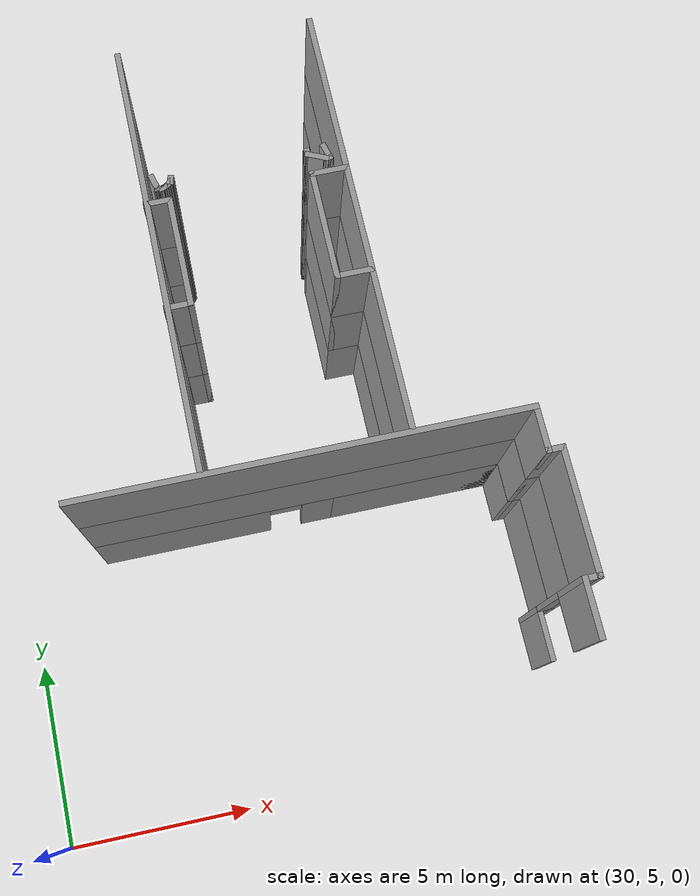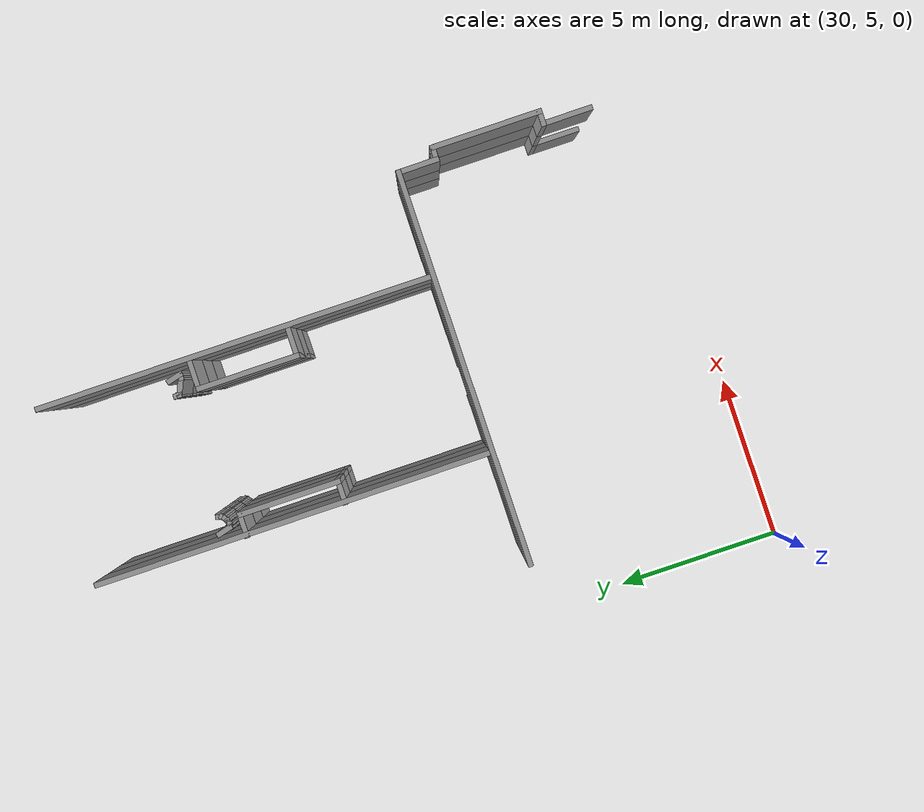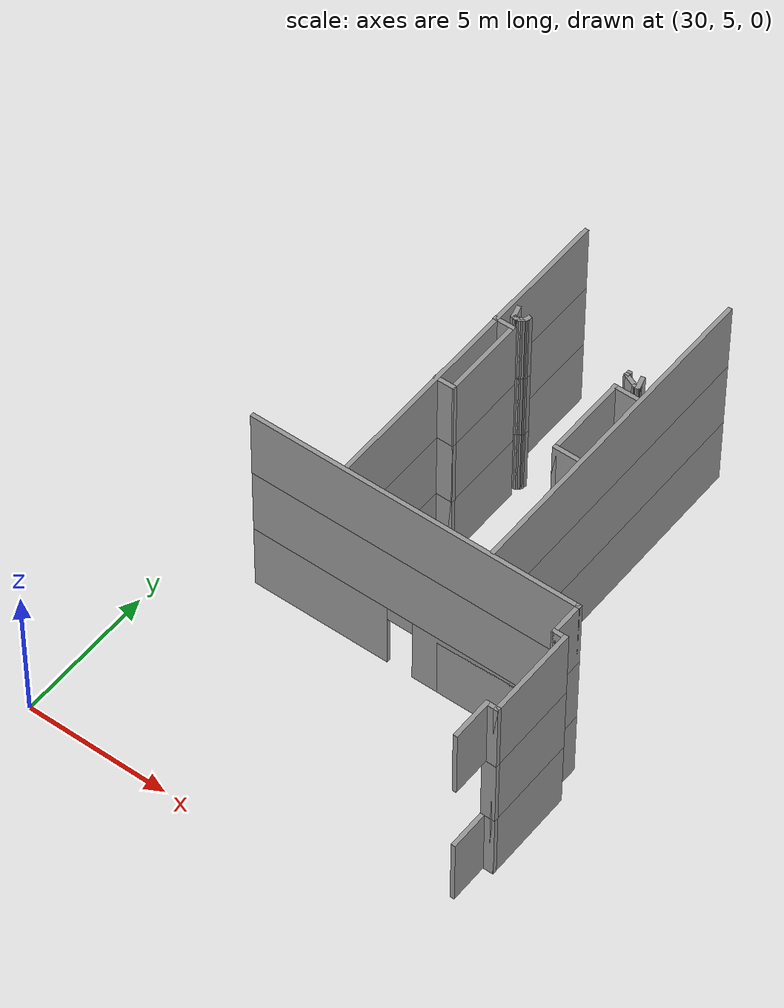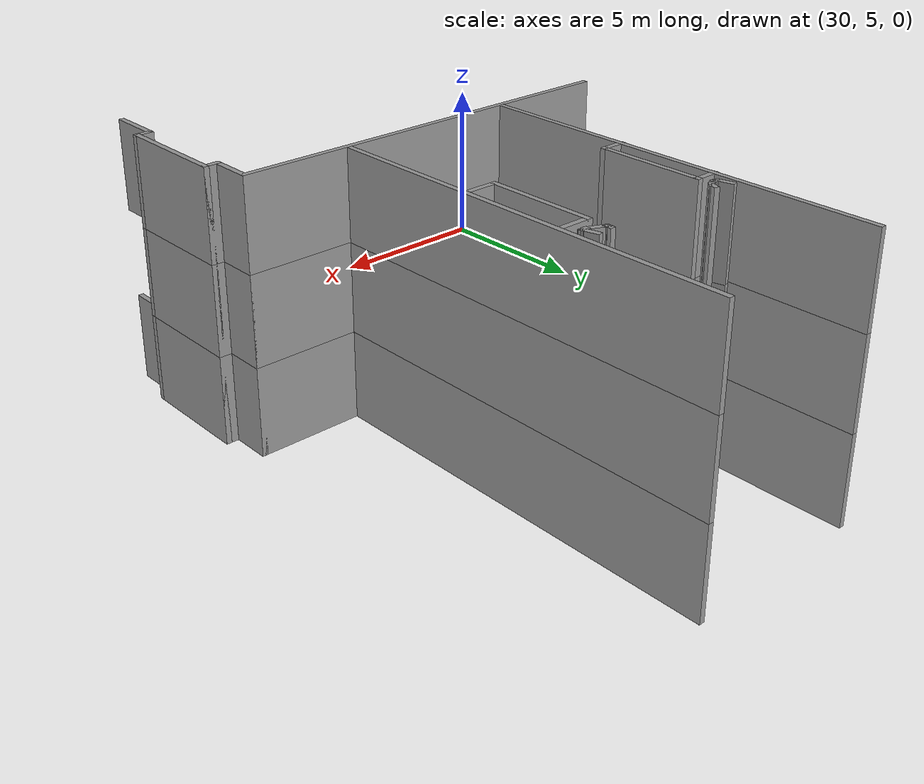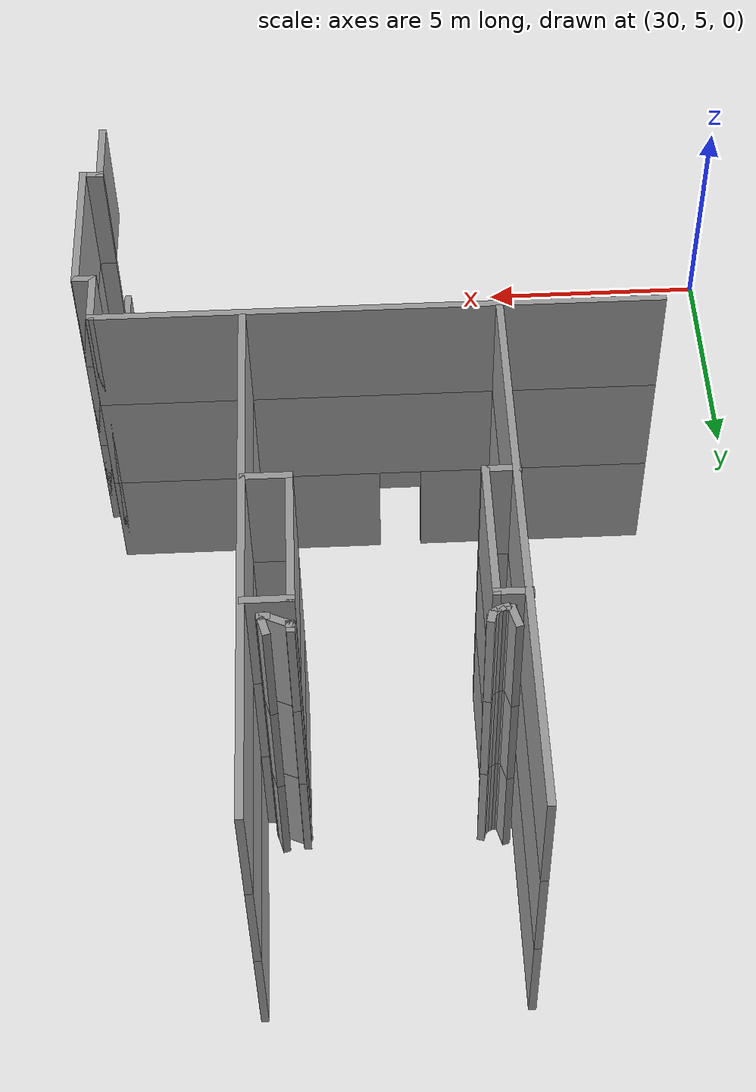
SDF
<sdf version="1.7">
 <model name="mapagazebo">
  <pose>-4.67869 9.01252 0 0 -0 0</pose>
  <link name="Wall_1181">
   <collision name="Wall_1181_Collision">
    <geometry><box><size>11.5 0.15 2.5</size></box></geometry>
    <pose>0 0 1.25 0 -0 0</pose>
   </collision>
   <visual name="Wall_1181_Visual">
    <pose>0 0 1.25 0 -0 0</pose>
    <geometry><box><size>11.5 0.15 2.5</size></box></geometry>
    <material>
     <script><uri>file://media/materials/scripts/gazebo.material</uri><name>Gazebo/Grey</name></script>
     <ambient>1 1 1 1</ambient>
    </material>
    <meta><layer>1</layer></meta>
   </visual>
   <pose>42.6962 3.6515 2.5 0 -0 0</pose>
  </link>
  <link name="Wall_1182">
   <collision name="Wall_1182_Collision">
    <geometry><box><size>1.25 0.15 2.5</size></box></geometry>
    <pose>0 0 1.25 0 -0 0</pose>
   </collision>
   <visual name="Wall_1182_Visual">
    <pose>0 0 1.25 0 -0 0</pose>
    <geometry><box><size>1.25 0.15 2.5</size></box></geometry>
    <material>
     <script><uri>file://media/materials/scripts/gazebo.material</uri><name>Gazebo/Grey</name></script>
     <ambient>1 1 1 1</ambient>
    </material>
    <meta><layer>1</layer></meta>
   </visual>
   <pose>48.3712 3.1015 2.5 0 -0 -1.5708</pose>
  </link>
  <link name="Wall_1183">
   <collision name="Wall_1183_Collision">
    <geometry><box><size>0.5 0.15 2.5</size></box></geometry>
    <pose>0 0 1.25 0 -0 0</pose>
   </collision>
   <visual name="Wall_1183_Visual">
    <pose>0 0 1.25 0 -0 0</pose>
    <geometry><box><size>0.5 0.15 2.5</size></box></geometry>
    <material>
     <script><uri>file://media/materials/scripts/gazebo.material</uri><name>Gazebo/Grey</name></script>
     <ambient>1 1 1 1</ambient>
    </material>
    <meta><layer>1</layer></meta>
   </visual>
   <pose>48.5462 2.5515 2.5 0 -0 0</pose>
  </link>
  <link name="Wall_1184">
   <collision name="Wall_1184_Collision">
    <geometry><box><size>3.25 0.15 2.5</size></box></geometry>
    <pose>0 0 1.25 0 -0 0</pose>
   </collision>
   <visual name="Wall_1184_Visual">
    <pose>0 0 1.25 0 -0 0</pose>
    <geometry><box><size>3.25 0.15 2.5</size></box></geometry>
    <material>
     <script><uri>file://media/materials/scripts/gazebo.material</uri><name>Gazebo/Grey</name></script>
     <ambient>1 1 1 1</ambient>
    </material>
    <meta><layer>1</layer></meta>
   </visual>
   <pose>48.7212 1.0015 2.5 0 -0 -1.5708</pose>
  </link>
  <link name="Wall_1185">
   <collision name="Wall_1185_Collision">
    <geometry><box><size>0.5 0.15 2.5</size></box></geometry>
    <pose>0 0 1.25 0 -0 0</pose>
   </collision>
   <visual name="Wall_1185_Visual">
    <pose>0 0 1.25 0 -0 0</pose>
    <geometry><box><size>0.5 0.15 2.5</size></box></geometry>
    <material>
     <script><uri>file://media/materials/scripts/gazebo.material</uri><name>Gazebo/Grey</name></script>
     <ambient>1 1 1 1</ambient>
    </material>
    <meta><layer>1</layer></meta>
   </visual>
   <pose>48.5462 -0.548499 2.5 0 -0 3.14159</pose>
  </link>
  <link name="Wall_1232">
   <collision name="Wall_1232_Collision">
    <geometry><box><size>11.5 0.15 2.5</size></box></geometry>
    <pose>0 0 1.25 0 -0 0</pose>
   </collision>
   <visual name="Wall_1232_Visual">
    <pose>0 0 1.25 0 -0 0</pose>
    <geometry><box><size>11.5 0.15 2.5</size></box></geometry>
    <material>
     <script><uri>file://media/materials/scripts/gazebo.material</uri><name>Gazebo/Grey</name></script>
     <ambient>1 1 1 1</ambient>
    </material>
    <meta><layer>1</layer></meta>
   </visual>
   <pose>40.2749 9.45199 2.5 0 -0 1.5708</pose>
  </link>
  <link name="Wall_1252">
   <collision name="Wall_1252_Collision">
    <geometry><box><size>0.75 0.15 2.5</size></box></geometry>
    <pose>0 0 1.25 0 -0 0</pose>
   </collision>
   <visual name="Wall_1252_Visual">
    <pose>0 0 1.25 0 -0 0</pose>
    <geometry><box><size>0.75 0.15 2.5</size></box></geometry>
    <material>
     <script><uri>file://media/materials/scripts/gazebo.material</uri><name>Gazebo/Grey</name></script>
     <ambient>1 1 1 1</ambient>
    </material>
    <meta><layer>1</layer></meta>
   </visual>
   <pose>40.5538 10.7876 2.5 0 -0 0</pose>
  </link>
  <link name="Wall_1253">
   <collision name="Wall_1253_Collision">
    <geometry><box><size>3 0.15 2.5</size></box></geometry>
    <pose>0 0 1.25 0 -0 0</pose>
   </collision>
   <visual name="Wall_1253_Visual">
    <pose>0 0 1.25 0 -0 0</pose>
    <geometry><box><size>3 0.15 2.5</size></box></geometry>
    <material>
     <script><uri>file://media/materials/scripts/gazebo.material</uri><name>Gazebo/Grey</name></script>
     <ambient>1 1 1 1</ambient>
    </material>
    <meta><layer>1</layer></meta>
   </visual>
   <pose>40.8538 9.36261 2.5 0 -0 -1.5708</pose>
  </link>
  <link name="Wall_1254">
   <collision name="Wall_1254_Collision">
    <geometry><box><size>0.75 0.15 2.5</size></box></geometry>
    <pose>0 0 1.25 0 -0 0</pose>
   </collision>
   <visual name="Wall_1254_Visual">
    <pose>0 0 1.25 0 -0 0</pose>
    <geometry><box><size>0.75 0.15 2.5</size></box></geometry>
    <material>
     <script><uri>file://media/materials/scripts/gazebo.material</uri><name>Gazebo/Grey</name></script>
     <ambient>1 1 1 1</ambient>
    </material>
    <meta><layer>1</layer></meta>
   </visual>
   <pose>40.5538 7.93761 2.5 0 -0 3.14159</pose>
  </link>
  <link name="Wall_1255">
   <collision name="Wall_1255_Collision">
    <geometry><box><size>1 0.15 2.5</size></box></geometry>
    <pose>0 0 1.25 0 -0 0</pose>
   </collision>
   <visual name="Wall_1255_Visual">
    <pose>0 0 1.25 0 -0 0</pose>
    <geometry><box><size>1 0.15 2.5</size></box></geometry>
    <material>
     <script><uri>file://media/materials/scripts/gazebo.material</uri><name>Gazebo/Grey</name></script>
     <ambient>1 1 1 1</ambient>
    </material>
    <meta><layer>1</layer></meta>
   </visual>
   <pose>44.9152 10.7561 2.5 0 -0 3.14159</pose>
  </link>
  <link name="Wall_1256">
   <collision name="Wall_1256_Collision">
    <geometry><box><size>3 0.15 2.5</size></box></geometry>
    <pose>0 0 1.25 0 -0 0</pose>
   </collision>
   <visual name="Wall_1256_Visual">
    <pose>0 0 1.25 0 -0 0</pose>
    <geometry><box><size>3 0.15 2.5</size></box></geometry>
    <material>
     <script><uri>file://media/materials/scripts/gazebo.material</uri><name>Gazebo/Grey</name></script>
     <ambient>1 1 1 1</ambient>
    </material>
    <meta><layer>1</layer></meta>
   </visual>
   <pose>44.4901 9.3311 2.5 0 -0 -1.5708</pose>
  </link>
  <link name="Wall_1257">
   <collision name="Wall_1257_Collision">
    <geometry><box><size>1 0.15 2.5</size></box></geometry>
    <pose>0 0 1.25 0 -0 0</pose>
   </collision>
   <visual name="Wall_1257_Visual">
    <pose>0 0 1.25 0 -0 0</pose>
    <geometry><box><size>1 0.15 2.5</size></box></geometry>
    <material>
     <script><uri>file://media/materials/scripts/gazebo.material</uri><name>Gazebo/Grey</name></script>
     <ambient>1 1 1 1</ambient>
    </material>
    <meta><layer>1</layer></meta>
   </visual>
   <pose>44.9152 7.9061 2.5 0 -0 0</pose>
  </link>
  <link name="Wall_1258">
   <collision name="Wall_1258_Collision">
    <geometry><box><size>11.5 0.15 2.5</size></box></geometry>
    <pose>0 0 1.25 0 -0 0</pose>
   </collision>
   <visual name="Wall_1258_Visual">
    <pose>0 0 1.25 0 -0 0</pose>
    <geometry><box><size>11.5 0.15 2.5</size></box></geometry>
    <material>
     <script><uri>file://media/materials/scripts/gazebo.material</uri><name>Gazebo/Grey</name></script>
     <ambient>1 1 1 1</ambient>
    </material>
    <meta><layer>1</layer></meta>
   </visual>
   <pose>45.3749 9.45199 2.5 0 -0 -1.5708</pose>
  </link>
  <link name="Wall_1265">
   <collision name="Wall_1265_Collision">
    <geometry><box><size>0.5 0.15 2.5</size></box></geometry>
    <pose>0 0 1.25 0 -0 0</pose>
   </collision>
   <visual name="Wall_1265_Visual">
    <pose>0 0 1.25 0 -0 0</pose>
    <geometry><box><size>0.5 0.15 2.5</size></box></geometry>
    <material>
     <script><uri>file://media/materials/scripts/gazebo.material</uri><name>Gazebo/Grey</name></script>
     <ambient>1 1 1 1</ambient>
    </material>
    <meta><layer>1</layer></meta>
   </visual>
   <pose>40.5633 11.3275 2.5 0 -0 -1.309</pose>
  </link>
  <link name="Wall_1266">
   <collision name="Wall_1266_Collision">
    <geometry><box><size>0.25 0.15 2.5</size></box></geometry>
    <pose>0 0 1.25 0 -0 0</pose>
   </collision>
   <visual name="Wall_1266_Visual">
    <pose>0 0 1.25 0 -0 0</pose>
    <geometry><box><size>0.25 0.15 2.5</size></box></geometry>
    <material>
     <script><uri>file://media/materials/scripts/gazebo.material</uri><name>Gazebo/Grey</name></script>
     <ambient>1 1 1 1</ambient>
    </material>
    <meta><layer>1</layer></meta>
   </visual>
   <pose>40.6569 11.1455 2.5 0 -0 -0.261799</pose>
  </link>
  <link name="Wall_1267">
   <collision name="Wall_1267_Collision">
    <geometry><box><size>0.15 0.15 2.5</size></box></geometry>
    <pose>0 0 1.25 0 -0 0</pose>
   </collision>
   <visual name="Wall_1267_Visual">
    <pose>0 0 1.25 0 -0 0</pose>
    <geometry><box><size>0.15 0.15 2.5</size></box></geometry>
    <material>
     <script><uri>file://media/materials/scripts/gazebo.material</uri><name>Gazebo/Grey</name></script>
     <ambient>1 1 1 1</ambient>
    </material>
    <meta><layer>1</layer></meta>
   </visual>
   <pose>40.7052 11.1326 2.5 0 -0 0</pose>
  </link>
  <link name="Wall_1268">
   <collision name="Wall_1268_Collision">
    <geometry><box><size>0.25 0.15 2.5</size></box></geometry>
    <pose>0 0 1.25 0 -0 0</pose>
   </collision>
   <visual name="Wall_1268_Visual">
    <pose>0 0 1.25 0 -0 0</pose>
    <geometry><box><size>0.25 0.15 2.5</size></box></geometry>
    <material>
     <script><uri>file://media/materials/scripts/gazebo.material</uri><name>Gazebo/Grey</name></script>
     <ambient>1 1 1 1</ambient>
    </material>
    <meta><layer>1</layer></meta>
   </visual>
   <pose>40.7535 11.1455 2.5 0 -0 0.261799</pose>
  </link>
  <link name="Wall_1269">
   <collision name="Wall_1269_Collision">
    <geometry><box><size>0.25 0.15 2.5</size></box></geometry>
    <pose>0 0 1.25 0 -0 0</pose>
   </collision>
   <visual name="Wall_1269_Visual">
    <pose>0 0 1.25 0 -0 0</pose>
    <geometry><box><size>0.25 0.15 2.5</size></box></geometry>
    <material>
     <script><uri>file://media/materials/scripts/gazebo.material</uri><name>Gazebo/Grey</name></script>
     <ambient>1 1 1 1</ambient>
    </material>
    <meta><layer>1</layer></meta>
   </visual>
   <pose>40.8451 11.1835 2.5 0 -0 0.523599</pose>
  </link>
  <link name="Wall_1270">
   <collision name="Wall_1270_Collision">
    <geometry><box><size>0.25 0.15 2.5</size></box></geometry>
    <pose>0 0 1.25 0 -0 0</pose>
   </collision>
   <visual name="Wall_1270_Visual">
    <pose>0 0 1.25 0 -0 0</pose>
    <geometry><box><size>0.25 0.15 2.5</size></box></geometry>
    <material>
     <script><uri>file://media/materials/scripts/gazebo.material</uri><name>Gazebo/Grey</name></script>
     <ambient>1 1 1 1</ambient>
    </material>
    <meta><layer>1</layer></meta>
   </visual>
   <pose>40.9237 11.2438 2.5 0 -0 0.785398</pose>
  </link>
  <link name="Wall_1271">
   <collision name="Wall_1271_Collision">
    <geometry><box><size>0.25 0.15 2.5</size></box></geometry>
    <pose>0 0 1.25 0 -0 0</pose>
   </collision>
   <visual name="Wall_1271_Visual">
    <pose>0 0 1.25 0 -0 0</pose>
    <geometry><box><size>0.25 0.15 2.5</size></box></geometry>
    <material>
     <script><uri>file://media/materials/scripts/gazebo.material</uri><name>Gazebo/Grey</name></script>
     <ambient>1 1 1 1</ambient>
    </material>
    <meta><layer>1</layer></meta>
   </visual>
   <pose>40.972 11.3275 2.5 0 -0 1.309</pose>
  </link>
  <link name="Wall_1274">
   <collision name="Wall_1274_Collision">
    <geometry><box><size>0.25 0.15 2.5</size></box></geometry>
    <pose>0 0 1.25 0 -0 0</pose>
   </collision>
   <visual name="Wall_1274_Visual">
    <pose>0 0 1.25 0 -0 0</pose>
    <geometry><box><size>0.25 0.15 2.5</size></box></geometry>
    <material>
     <script><uri>file://media/materials/scripts/gazebo.material</uri><name>Gazebo/Grey</name></script>
     <ambient>1 1 1 1</ambient>
    </material>
    <meta><layer>1</layer></meta>
   </visual>
   <pose>44.4986 11.3626 2.5 0 -0 1.5708</pose>
  </link>
  <link name="Wall_1275">
   <collision name="Wall_1275_Collision">
    <geometry><box><size>0.15 0.15 2.5</size></box></geometry>
    <pose>0 0 1.25 0 -0 0</pose>
   </collision>
   <visual name="Wall_1275_Visual">
    <pose>0 0 1.25 0 -0 0</pose>
    <geometry><box><size>0.15 0.15 2.5</size></box></geometry>
    <material>
     <script><uri>file://media/materials/scripts/gazebo.material</uri><name>Gazebo/Grey</name></script>
     <ambient>1 1 1 1</ambient>
    </material>
    <meta><layer>1</layer></meta>
   </visual>
   <pose>44.4986 11.4126 2.5 0 -0 0</pose>
  </link>
  <link name="Wall_1282">
   <collision name="Wall_1282_Collision">
    <geometry><box><size>0.5 0.15 2.5</size></box></geometry>
    <pose>0 0 1.25 0 -0 0</pose>
   </collision>
   <visual name="Wall_1282_Visual">
    <pose>0 0 1.25 0 -0 0</pose>
    <geometry><box><size>0.5 0.15 2.5</size></box></geometry>
    <material>
     <script><uri>file://media/materials/scripts/gazebo.material</uri><name>Gazebo/Grey</name></script>
     <ambient>1 1 1 1</ambient>
    </material>
    <meta><layer>1</layer></meta>
   </visual>
   <pose>44.9844 11.2884 2.5 0 -0 -1.309</pose>
  </link>
  <link name="Wall_1283">
   <collision name="Wall_1283_Collision">
    <geometry><box><size>0.25 0.15 2.5</size></box></geometry>
    <pose>0 0 1.25 0 -0 0</pose>
   </collision>
   <visual name="Wall_1283_Visual">
    <pose>0 0 1.25 0 -0 0</pose>
    <geometry><box><size>0.25 0.15 2.5</size></box></geometry>
    <material>
     <script><uri>file://media/materials/scripts/gazebo.material</uri><name>Gazebo/Grey</name></script>
     <ambient>1 1 1 1</ambient>
    </material>
    <meta><layer>1</layer></meta>
   </visual>
   <pose>44.9797 11.1193 2.5 0 -0 3.14159</pose>
  </link>
  <link name="Wall_1284">
   <collision name="Wall_1284_Collision">
    <geometry><box><size>0.622426 0.15 2.5</size></box></geometry>
    <pose>0 0 1.25 0 -0 0</pose>
   </collision>
   <visual name="Wall_1284_Visual">
    <pose>0 0 1.25 0 -0 0</pose>
    <geometry><box><size>0.622426 0.15 2.5</size></box></geometry>
    <material>
     <script><uri>file://media/materials/scripts/gazebo.material</uri><name>Gazebo/Grey</name></script>
     <ambient>1 1 1 1</ambient>
    </material>
    <meta><layer>1</layer></meta>
   </visual>
   <pose>44.7142 11.216 2.5 0 -0 2.72018</pose>
  </link>
  <link name="Wall_1285">
   <collision name="Wall_1285_Collision">
    <geometry><box><size>0.15 0.15 2.5</size></box></geometry>
    <pose>0 0 1.25 0 -0 0</pose>
   </collision>
   <visual name="Wall_1285_Visual">
    <pose>0 0 1.25 0 -0 0</pose>
    <geometry><box><size>0.15 0.15 2.5</size></box></geometry>
    <material>
     <script><uri>file://media/materials/scripts/gazebo.material</uri><name>Gazebo/Grey</name></script>
     <ambient>1 1 1 1</ambient>
    </material>
    <meta><layer>1</layer></meta>
   </visual>
   <pose>44.4986 11.3126 2.5 0 -0 0</pose>
  </link>
  <link name="Wall_1286">
   <collision name="Wall_1286_Collision">
    <geometry><box><size>0.16 0.15 2.5</size></box></geometry>
    <pose>0 0 1.25 0 -0 0</pose>
   </collision>
   <visual name="Wall_1286_Visual">
    <pose>0 0 1.25 0 -0 0</pose>
    <geometry><box><size>0.16 0.15 2.5</size></box></geometry>
    <material>
     <script><uri>file://media/materials/scripts/gazebo.material</uri><name>Gazebo/Grey</name></script>
     <ambient>1 1 1 1</ambient>
    </material>
    <meta><layer>1</layer></meta>
   </visual>
   <pose>44.5036 11.3126 2.5 0 -0 0</pose>
  </link>
  <link name="Wall_1805">
   <collision name="Wall_1805_Collision">
    <geometry><box><size>11.5 0.15 2.5</size></box></geometry>
    <pose>0 0 1.25 0 -0 0</pose>
   </collision>
   <visual name="Wall_1805_Visual">
    <pose>0 0 1.25 0 -0 0</pose>
    <geometry><box><size>11.5 0.15 2.5</size></box></geometry>
    <material>
     <script><uri>file://media/materials/scripts/gazebo.material</uri><name>Gazebo/Grey</name></script>
     <ambient>1 1 1 1</ambient>
    </material>
    <meta><layer>2</layer></meta>
   </visual>
   <pose>42.6962 3.6515 5 0 -0 0</pose>
  </link>
  <link name="Wall_1806">
   <collision name="Wall_1806_Collision">
    <geometry><box><size>1.25 0.15 2.5</size></box></geometry>
    <pose>0 0 1.25 0 -0 0</pose>
   </collision>
   <visual name="Wall_1806_Visual">
    <pose>0 0 1.25 0 -0 0</pose>
    <geometry><box><size>1.25 0.15 2.5</size></box></geometry>
    <material>
     <script><uri>file://media/materials/scripts/gazebo.material</uri><name>Gazebo/Grey</name></script>
     <ambient>1 1 1 1</ambient>
    </material>
    <meta><layer>2</layer></meta>
   </visual>
   <pose>48.3712 3.1015 5 0 -0 -1.5708</pose>
  </link>
  <link name="Wall_1807">
   <collision name="Wall_1807_Collision">
    <geometry><box><size>0.5 0.15 2.5</size></box></geometry>
    <pose>0 0 1.25 0 -0 0</pose>
   </collision>
   <visual name="Wall_1807_Visual">
    <pose>0 0 1.25 0 -0 0</pose>
    <geometry><box><size>0.5 0.15 2.5</size></box></geometry>
    <material>
     <script><uri>file://media/materials/scripts/gazebo.material</uri><name>Gazebo/Grey</name></script>
     <ambient>1 1 1 1</ambient>
    </material>
    <meta><layer>2</layer></meta>
   </visual>
   <pose>48.5462 2.5515 5 0 -0 0</pose>
  </link>
  <link name="Wall_1808">
   <collision name="Wall_1808_Collision">
    <geometry><box><size>3.25 0.15 2.5</size></box></geometry>
    <pose>0 0 1.25 0 -0 0</pose>
   </collision>
   <visual name="Wall_1808_Visual">
    <pose>0 0 1.25 0 -0 0</pose>
    <geometry><box><size>3.25 0.15 2.5</size></box></geometry>
    <material>
     <script><uri>file://media/materials/scripts/gazebo.material</uri><name>Gazebo/Grey</name></script>
     <ambient>1 1 1 1</ambient>
    </material>
    <meta><layer>2</layer></meta>
   </visual>
   <pose>48.7212 1.0015 5 0 -0 -1.5708</pose>
  </link>
  <link name="Wall_1809">
   <collision name="Wall_1809_Collision">
    <geometry><box><size>0.5 0.15 2.5</size></box></geometry>
    <pose>0 0 1.25 0 -0 0</pose>
   </collision>
   <visual name="Wall_1809_Visual">
    <pose>0 0 1.25 0 -0 0</pose>
    <geometry><box><size>0.5 0.15 2.5</size></box></geometry>
    <material>
     <script><uri>file://media/materials/scripts/gazebo.material</uri><name>Gazebo/Grey</name></script>
     <ambient>1 1 1 1</ambient>
    </material>
    <meta><layer>2</layer></meta>
   </visual>
   <pose>48.5462 -0.548499 5 0 -0 3.14159</pose>
  </link>
  <link name="Wall_1810">
   <collision name="Wall_1810_Collision">
    <geometry><box><size>1.5 0.15 2.5</size></box></geometry>
    <pose>0 0 1.25 0 -0 0</pose>
   </collision>
   <visual name="Wall_1810_Visual">
    <pose>0 0 1.25 0 -0 0</pose>
    <geometry><box><size>1.5 0.15 2.5</size></box></geometry>
    <material>
     <script><uri>file://media/materials/scripts/gazebo.material</uri><name>Gazebo/Grey</name></script>
     <ambient>1 1 1 1</ambient>
    </material>
    <meta><layer>2</layer></meta>
   </visual>
   <pose>48.3712 -1.2235 5 0 -0 -1.5708</pose>
  </link>
  <link name="Wall_1856">
   <collision name="Wall_1856_Collision">
    <geometry><box><size>11.5 0.15 2.5</size></box></geometry>
    <pose>0 0 1.25 0 -0 0</pose>
   </collision>
   <visual name="Wall_1856_Visual">
    <pose>0 0 1.25 0 -0 0</pose>
    <geometry><box><size>11.5 0.15 2.5</size></box></geometry>
    <material>
     <script><uri>file://media/materials/scripts/gazebo.material</uri><name>Gazebo/Grey</name></script>
     <ambient>1 1 1 1</ambient>
    </material>
    <meta><layer>2</layer></meta>
   </visual>
   <pose>40.2749 9.45199 5 0 -0 1.5708</pose>
  </link>
  <link name="Wall_1876">
   <collision name="Wall_1876_Collision">
    <geometry><box><size>0.75 0.15 2.5</size></box></geometry>
    <pose>0 0 1.25 0 -0 0</pose>
   </collision>
   <visual name="Wall_1876_Visual">
    <pose>0 0 1.25 0 -0 0</pose>
    <geometry><box><size>0.75 0.15 2.5</size></box></geometry>
    <material>
     <script><uri>file://media/materials/scripts/gazebo.material</uri><name>Gazebo/Grey</name></script>
     <ambient>1 1 1 1</ambient>
    </material>
    <meta><layer>2</layer></meta>
   </visual>
   <pose>40.5538 10.7876 5 0 -0 0</pose>
  </link>
  <link name="Wall_1877">
   <collision name="Wall_1877_Collision">
    <geometry><box><size>3 0.15 2.5</size></box></geometry>
    <pose>0 0 1.25 0 -0 0</pose>
   </collision>
   <visual name="Wall_1877_Visual">
    <pose>0 0 1.25 0 -0 0</pose>
    <geometry><box><size>3 0.15 2.5</size></box></geometry>
    <material>
     <script><uri>file://media/materials/scripts/gazebo.material</uri><name>Gazebo/Grey</name></script>
     <ambient>1 1 1 1</ambient>
    </material>
    <meta><layer>2</layer></meta>
   </visual>
   <pose>40.8538 9.36261 5 0 -0 -1.5708</pose>
  </link>
  <link name="Wall_1878">
   <collision name="Wall_1878_Collision">
    <geometry><box><size>0.75 0.15 2.5</size></box></geometry>
    <pose>0 0 1.25 0 -0 0</pose>
   </collision>
   <visual name="Wall_1878_Visual">
    <pose>0 0 1.25 0 -0 0</pose>
    <geometry><box><size>0.75 0.15 2.5</size></box></geometry>
    <material>
     <script><uri>file://media/materials/scripts/gazebo.material</uri><name>Gazebo/Grey</name></script>
     <ambient>1 1 1 1</ambient>
    </material>
    <meta><layer>2</layer></meta>
   </visual>
   <pose>40.5538 7.93761 5 0 -0 3.14159</pose>
  </link>
  <link name="Wall_1879">
   <collision name="Wall_1879_Collision">
    <geometry><box><size>1 0.15 2.5</size></box></geometry>
    <pose>0 0 1.25 0 -0 0</pose>
   </collision>
   <visual name="Wall_1879_Visual">
    <pose>0 0 1.25 0 -0 0</pose>
    <geometry><box><size>1 0.15 2.5</size></box></geometry>
    <material>
     <script><uri>file://media/materials/scripts/gazebo.material</uri><name>Gazebo/Grey</name></script>
     <ambient>1 1 1 1</ambient>
    </material>
    <meta><layer>2</layer></meta>
   </visual>
   <pose>44.9152 10.7561 5 0 -0 3.14159</pose>
  </link>
  <link name="Wall_1880">
   <collision name="Wall_1880_Collision">
    <geometry><box><size>3 0.15 2.5</size></box></geometry>
    <pose>0 0 1.25 0 -0 0</pose>
   </collision>
   <visual name="Wall_1880_Visual">
    <pose>0 0 1.25 0 -0 0</pose>
    <geometry><box><size>3 0.15 2.5</size></box></geometry>
    <material>
     <script><uri>file://media/materials/scripts/gazebo.material</uri><name>Gazebo/Grey</name></script>
     <ambient>1 1 1 1</ambient>
    </material>
    <meta><layer>2</layer></meta>
   </visual>
   <pose>44.4901 9.3311 5 0 -0 -1.5708</pose>
  </link>
  <link name="Wall_1881">
   <collision name="Wall_1881_Collision">
    <geometry><box><size>1 0.15 2.5</size></box></geometry>
    <pose>0 0 1.25 0 -0 0</pose>
   </collision>
   <visual name="Wall_1881_Visual">
    <pose>0 0 1.25 0 -0 0</pose>
    <geometry><box><size>1 0.15 2.5</size></box></geometry>
    <material>
     <script><uri>file://media/materials/scripts/gazebo.material</uri><name>Gazebo/Grey</name></script>
     <ambient>1 1 1 1</ambient>
    </material>
    <meta><layer>2</layer></meta>
   </visual>
   <pose>44.9152 7.9061 5 0 -0 0</pose>
  </link>
  <link name="Wall_1882">
   <collision name="Wall_1882_Collision">
    <geometry><box><size>11.5 0.15 2.5</size></box></geometry>
    <pose>0 0 1.25 0 -0 0</pose>
   </collision>
   <visual name="Wall_1882_Visual">
    <pose>0 0 1.25 0 -0 0</pose>
    <geometry><box><size>11.5 0.15 2.5</size></box></geometry>
    <material>
     <script><uri>file://media/materials/scripts/gazebo.material</uri><name>Gazebo/Grey</name></script>
     <ambient>1 1 1 1</ambient>
    </material>
    <meta><layer>2</layer></meta>
   </visual>
   <pose>45.3749 9.45199 5 0 -0 -1.5708</pose>
  </link>
  <link name="Wall_1889">
   <collision name="Wall_1889_Collision">
    <geometry><box><size>0.5 0.15 2.5</size></box></geometry>
    <pose>0 0 1.25 0 -0 0</pose>
   </collision>
   <visual name="Wall_1889_Visual">
    <pose>0 0 1.25 0 -0 0</pose>
    <geometry><box><size>0.5 0.15 2.5</size></box></geometry>
    <material>
     <script><uri>file://media/materials/scripts/gazebo.material</uri><name>Gazebo/Grey</name></script>
     <ambient>1 1 1 1</ambient>
    </material>
    <meta><layer>2</layer></meta>
   </visual>
   <pose>40.5633 11.3275 5 0 -0 -1.309</pose>
  </link>
  <link name="Wall_1890">
   <collision name="Wall_1890_Collision">
    <geometry><box><size>0.25 0.15 2.5</size></box></geometry>
    <pose>0 0 1.25 0 -0 0</pose>
   </collision>
   <visual name="Wall_1890_Visual">
    <pose>0 0 1.25 0 -0 0</pose>
    <geometry><box><size>0.25 0.15 2.5</size></box></geometry>
    <material>
     <script><uri>file://media/materials/scripts/gazebo.material</uri><name>Gazebo/Grey</name></script>
     <ambient>1 1 1 1</ambient>
    </material>
    <meta><layer>2</layer></meta>
   </visual>
   <pose>40.6569 11.1455 5 0 -0 -0.261799</pose>
  </link>
  <link name="Wall_1891">
   <collision name="Wall_1891_Collision">
    <geometry><box><size>0.15 0.15 2.5</size></box></geometry>
    <pose>0 0 1.25 0 -0 0</pose>
   </collision>
   <visual name="Wall_1891_Visual">
    <pose>0 0 1.25 0 -0 0</pose>
    <geometry><box><size>0.15 0.15 2.5</size></box></geometry>
    <material>
     <script><uri>file://media/materials/scripts/gazebo.material</uri><name>Gazebo/Grey</name></script>
     <ambient>1 1 1 1</ambient>
    </material>
    <meta><layer>2</layer></meta>
   </visual>
   <pose>40.7052 11.1326 5 0 -0 0</pose>
  </link>
  <link name="Wall_1892">
   <collision name="Wall_1892_Collision">
    <geometry><box><size>0.25 0.15 2.5</size></box></geometry>
    <pose>0 0 1.25 0 -0 0</pose>
   </collision>
   <visual name="Wall_1892_Visual">
    <pose>0 0 1.25 0 -0 0</pose>
    <geometry><box><size>0.25 0.15 2.5</size></box></geometry>
    <material>
     <script><uri>file://media/materials/scripts/gazebo.material</uri><name>Gazebo/Grey</name></script>
     <ambient>1 1 1 1</ambient>
    </material>
    <meta><layer>2</layer></meta>
   </visual>
   <pose>40.7535 11.1455 5 0 -0 0.261799</pose>
  </link>
  <link name="Wall_1893">
   <collision name="Wall_1893_Collision">
    <geometry><box><size>0.25 0.15 2.5</size></box></geometry>
    <pose>0 0 1.25 0 -0 0</pose>
   </collision>
   <visual name="Wall_1893_Visual">
    <pose>0 0 1.25 0 -0 0</pose>
    <geometry><box><size>0.25 0.15 2.5</size></box></geometry>
    <material>
     <script><uri>file://media/materials/scripts/gazebo.material</uri><name>Gazebo/Grey</name></script>
     <ambient>1 1 1 1</ambient>
    </material>
    <meta><layer>2</layer></meta>
   </visual>
   <pose>40.8451 11.1835 5 0 -0 0.523599</pose>
  </link>
  <link name="Wall_1894">
   <collision name="Wall_1894_Collision">
    <geometry><box><size>0.25 0.15 2.5</size></box></geometry>
    <pose>0 0 1.25 0 -0 0</pose>
   </collision>
   <visual name="Wall_1894_Visual">
    <pose>0 0 1.25 0 -0 0</pose>
    <geometry><box><size>0.25 0.15 2.5</size></box></geometry>
    <material>
     <script><uri>file://media/materials/scripts/gazebo.material</uri><name>Gazebo/Grey</name></script>
     <ambient>1 1 1 1</ambient>
    </material>
    <meta><layer>2</layer></meta>
   </visual>
   <pose>40.9237 11.2438 5 0 -0 0.785398</pose>
  </link>
  <link name="Wall_1895">
   <collision name="Wall_1895_Collision">
    <geometry><box><size>0.25 0.15 2.5</size></box></geometry>
    <pose>0 0 1.25 0 -0 0</pose>
   </collision>
   <visual name="Wall_1895_Visual">
    <pose>0 0 1.25 0 -0 0</pose>
    <geometry><box><size>0.25 0.15 2.5</size></box></geometry>
    <material>
     <script><uri>file://media/materials/scripts/gazebo.material</uri><name>Gazebo/Grey</name></script>
     <ambient>1 1 1 1</ambient>
    </material>
    <meta><layer>2</layer></meta>
   </visual>
   <pose>40.972 11.3275 5 0 -0 1.309</pose>
  </link>
  <link name="Wall_1898">
   <collision name="Wall_1898_Collision">
    <geometry><box><size>0.25 0.15 2.5</size></box></geometry>
    <pose>0 0 1.25 0 -0 0</pose>
   </collision>
   <visual name="Wall_1898_Visual">
    <pose>0 0 1.25 0 -0 0</pose>
    <geometry><box><size>0.25 0.15 2.5</size></box></geometry>
    <material>
     <script><uri>file://media/materials/scripts/gazebo.material</uri><name>Gazebo/Grey</name></script>
     <ambient>1 1 1 1</ambient>
    </material>
    <meta><layer>2</layer></meta>
   </visual>
   <pose>44.4986 11.3626 5 0 -0 1.5708</pose>
  </link>
  <link name="Wall_1906">
   <collision name="Wall_1906_Collision">
    <geometry><box><size>0.5 0.15 2.5</size></box></geometry>
    <pose>0 0 1.25 0 -0 0</pose>
   </collision>
   <visual name="Wall_1906_Visual">
    <pose>0 0 1.25 0 -0 0</pose>
    <geometry><box><size>0.5 0.15 2.5</size></box></geometry>
    <material>
     <script><uri>file://media/materials/scripts/gazebo.material</uri><name>Gazebo/Grey</name></script>
     <ambient>1 1 1 1</ambient>
    </material>
    <meta><layer>2</layer></meta>
   </visual>
   <pose>44.9844 11.2884 5 0 -0 -1.309</pose>
  </link>
  <link name="Wall_1907">
   <collision name="Wall_1907_Collision">
    <geometry><box><size>0.25 0.15 2.5</size></box></geometry>
    <pose>0 0 1.25 0 -0 0</pose>
   </collision>
   <visual name="Wall_1907_Visual">
    <pose>0 0 1.25 0 -0 0</pose>
    <geometry><box><size>0.25 0.15 2.5</size></box></geometry>
    <material>
     <script><uri>file://media/materials/scripts/gazebo.material</uri><name>Gazebo/Grey</name></script>
     <ambient>1 1 1 1</ambient>
    </material>
    <meta><layer>2</layer></meta>
   </visual>
   <pose>44.9797 11.1193 5 0 -0 3.14159</pose>
  </link>
  <link name="Wall_1908">
   <collision name="Wall_1908_Collision">
    <geometry><box><size>0.622426 0.15 2.5</size></box></geometry>
    <pose>0 0 1.25 0 -0 0</pose>
   </collision>
   <visual name="Wall_1908_Visual">
    <pose>0 0 1.25 0 -0 0</pose>
    <geometry><box><size>0.622426 0.15 2.5</size></box></geometry>
    <material>
     <script><uri>file://media/materials/scripts/gazebo.material</uri><name>Gazebo/Grey</name></script>
     <ambient>1 1 1 1</ambient>
    </material>
    <meta><layer>2</layer></meta>
   </visual>
   <pose>44.7142 11.216 5 0 -0 2.72018</pose>
  </link>
  <link name="Wall_1909">
   <collision name="Wall_1909_Collision">
    <geometry><box><size>0.15 0.15 2.5</size></box></geometry>
    <pose>0 0 1.25 0 -0 0</pose>
   </collision>
   <visual name="Wall_1909_Visual">
    <pose>0 0 1.25 0 -0 0</pose>
    <geometry><box><size>0.15 0.15 2.5</size></box></geometry>
    <material>
     <script><uri>file://media/materials/scripts/gazebo.material</uri><name>Gazebo/Grey</name></script>
     <ambient>1 1 1 1</ambient>
    </material>
    <meta><layer>2</layer></meta>
   </visual>
   <pose>44.4986 11.3126 5 0 -0 0</pose>
  </link>
  <link name="Wall_1910">
   <collision name="Wall_1910_Collision">
    <geometry><box><size>0.16 0.15 2.5</size></box></geometry>
    <pose>0 0 1.25 0 -0 0</pose>
   </collision>
   <visual name="Wall_1910_Visual">
    <pose>0 0 1.25 0 -0 0</pose>
    <geometry><box><size>0.16 0.15 2.5</size></box></geometry>
    <material>
     <script><uri>file://media/materials/scripts/gazebo.material</uri><name>Gazebo/Grey</name></script>
     <ambient>1 1 1 1</ambient>
    </material>
    <meta><layer>2</layer></meta>
   </visual>
   <pose>44.5036 11.3126 5 0 -0 0</pose>
  </link>
  <link name="Wall_507">
   <pose>42.6962 3.6515 0 0 -0 0</pose>
   <visual name="Wall_507_Visual_0">
    <pose>-3.30513 0 1.25 0 -0 0</pose>
    <geometry><box><size>4.88973 0.15 2.5</size></box></geometry>
    <material>
     <script><uri>file://media/materials/scripts/gazebo.material</uri><name>Gazebo/Grey</name></script>
     <ambient>1 1 1 1</ambient>
    </material>
    <meta><layer>0</layer></meta>
   </visual>
   <collision name="Wall_507_Collision_0">
    <geometry><box><size>4.88973 0.15 2.5</size></box></geometry>
    <pose>-3.30513 0 1.25 0 -0 0</pose>
   </collision>
   <visual name="Wall_507_Visual_1">
    <pose>2.89486 0 1.25 0 -0 0</pose>
    <geometry><box><size>5.71027 0.15 2.5</size></box></geometry>
    <material>
     <script><uri>file://media/materials/scripts/gazebo.material</uri><name>Gazebo/Grey</name></script>
     <ambient>1 1 1 1</ambient>
    </material>
    <meta><layer>0</layer></meta>
   </visual>
   <collision name="Wall_507_Collision_1">
    <geometry><box><size>5.71027 0.15 2.5</size></box></geometry>
    <pose>2.89486 0 1.25 0 -0 0</pose>
   </collision>
   <visual name="Wall_507_Visual_2">
    <pose>3.34025 0 1.25 0 -0 0</pose>
    <geometry><box><size>4.81949 0.15 2.5</size></box></geometry>
    <material>
     <script><uri>file://media/materials/scripts/gazebo.material</uri><name>Gazebo/Grey</name></script>
     <ambient>1 1 1 1</ambient>
    </material>
    <meta><layer>0</layer></meta>
   </visual>
   <collision name="Wall_507_Collision_2">
    <geometry><box><size>4.81949 0.15 2.5</size></box></geometry>
    <pose>3.34025 0 1.25 0 -0 0</pose>
   </collision>
   <visual name="Wall_507_Visual_3">
    <pose>-0.41488 0 2.25 0 -0 0</pose>
    <geometry><box><size>0.890781 0.15 0.5</size></box></geometry>
    <material>
     <script><uri>file://media/materials/scripts/gazebo.material</uri><name>Gazebo/Grey</name></script>
     <ambient>1 1 1 1</ambient>
    </material>
    <meta><layer>0</layer></meta>
   </visual>
   <collision name="Wall_507_Collision_3">
    <geometry><box><size>0.890781 0.15 0.5</size></box></geometry>
    <pose>-0.41488 0 2.25 0 -0 0</pose>
   </collision>
  </link>
  <link name="Wall_508">
   <collision name="Wall_508_Collision">
    <geometry><box><size>1.25 0.15 2.5</size></box></geometry>
    <pose>0 0 1.25 0 -0 0</pose>
   </collision>
   <visual name="Wall_508_Visual">
    <pose>0 0 1.25 0 -0 0</pose>
    <geometry><box><size>1.25 0.15 2.5</size></box></geometry>
    <material>
     <script><uri>file://media/materials/scripts/gazebo.material</uri><name>Gazebo/Grey</name></script>
     <ambient>1 1 1 1</ambient>
    </material>
    <meta><layer>0</layer></meta>
   </visual>
   <pose>48.3712 3.1015 0 0 -0 -1.5708</pose>
  </link>
  <link name="Wall_511">
   <collision name="Wall_511_Collision">
    <geometry><box><size>0.5 0.15 2.5</size></box></geometry>
    <pose>0 0 1.25 0 -0 0</pose>
   </collision>
   <visual name="Wall_511_Visual">
    <pose>0 0 1.25 0 -0 0</pose>
    <geometry><box><size>0.5 0.15 2.5</size></box></geometry>
    <material>
     <script><uri>file://media/materials/scripts/gazebo.material</uri><name>Gazebo/Grey</name></script>
     <ambient>1 1 1 1</ambient>
    </material>
    <meta><layer>0</layer></meta>
   </visual>
   <pose>48.5462 2.5515 0 0 -0 0</pose>
  </link>
  <link name="Wall_512">
   <collision name="Wall_512_Collision">
    <geometry><box><size>3.25 0.15 2.5</size></box></geometry>
    <pose>0 0 1.25 0 -0 0</pose>
   </collision>
   <visual name="Wall_512_Visual">
    <pose>0 0 1.25 0 -0 0</pose>
    <geometry><box><size>3.25 0.15 2.5</size></box></geometry>
    <material>
     <script><uri>file://media/materials/scripts/gazebo.material</uri><name>Gazebo/Grey</name></script>
     <ambient>1 1 1 1</ambient>
    </material>
    <meta><layer>0</layer></meta>
   </visual>
   <pose>48.7212 1.0015 0 0 -0 -1.5708</pose>
  </link>
  <link name="Wall_513">
   <collision name="Wall_513_Collision">
    <geometry><box><size>0.5 0.15 2.5</size></box></geometry>
    <pose>0 0 1.25 0 -0 0</pose>
   </collision>
   <visual name="Wall_513_Visual">
    <pose>0 0 1.25 0 -0 0</pose>
    <geometry><box><size>0.5 0.15 2.5</size></box></geometry>
    <material>
     <script><uri>file://media/materials/scripts/gazebo.material</uri><name>Gazebo/Grey</name></script>
     <ambient>1 1 1 1</ambient>
    </material>
    <meta><layer>0</layer></meta>
   </visual>
   <pose>48.5462 -0.548498 0 0 -0 3.14159</pose>
  </link>
  <link name="Wall_514">
   <collision name="Wall_514_Collision">
    <geometry><box><size>1.5 0.15 2.5</size></box></geometry>
    <pose>0 0 1.25 0 -0 0</pose>
   </collision>
   <visual name="Wall_514_Visual">
    <pose>0 0 1.25 0 -0 0</pose>
    <geometry><box><size>1.5 0.15 2.5</size></box></geometry>
    <material>
     <script><uri>file://media/materials/scripts/gazebo.material</uri><name>Gazebo/Grey</name></script>
     <ambient>1 1 1 1</ambient>
    </material>
    <meta><layer>0</layer></meta>
   </visual>
   <pose>48.3712 -1.2235 0 0 -0 -1.5708</pose>
  </link>
  <link name="Wall_569">
   <collision name="Wall_569_Collision">
    <geometry><box><size>11.5 0.15 2.5</size></box></geometry>
    <pose>0 0 1.25 0 -0 0</pose>
   </collision>
   <visual name="Wall_569_Visual">
    <pose>0 0 1.25 0 -0 0</pose>
    <geometry><box><size>11.5 0.15 2.5</size></box></geometry>
    <material>
     <script><uri>file://media/materials/scripts/gazebo.material</uri><name>Gazebo/Grey</name></script>
     <ambient>1 1 1 1</ambient>
    </material>
    <meta><layer>0</layer></meta>
   </visual>
   <pose>40.2749 9.45199 0 0 -0 1.5708</pose>
  </link>
  <link name="Wall_602">
   <collision name="Wall_602_Collision">
    <geometry><box><size>0.75 0.15 2.5</size></box></geometry>
    <pose>0 0 1.25 0 -0 0</pose>
   </collision>
   <visual name="Wall_602_Visual">
    <pose>0 0 1.25 0 -0 0</pose>
    <geometry><box><size>0.75 0.15 2.5</size></box></geometry>
    <material>
     <script><uri>file://media/materials/scripts/gazebo.material</uri><name>Gazebo/Grey</name></script>
     <ambient>1 1 1 1</ambient>
    </material>
    <meta><layer>0</layer></meta>
   </visual>
   <pose>40.5538 10.7876 0 0 -0 0</pose>
  </link>
  <link name="Wall_605">
   <collision name="Wall_605_Collision">
    <geometry><box><size>3 0.15 2.5</size></box></geometry>
    <pose>0 0 1.25 0 -0 0</pose>
   </collision>
   <visual name="Wall_605_Visual">
    <pose>0 0 1.25 0 -0 0</pose>
    <geometry><box><size>3 0.15 2.5</size></box></geometry>
    <material>
     <script><uri>file://media/materials/scripts/gazebo.material</uri><name>Gazebo/Grey</name></script>
     <ambient>1 1 1 1</ambient>
    </material>
    <meta><layer>0</layer></meta>
   </visual>
   <pose>40.8538 9.36261 0 0 -0 -1.5708</pose>
  </link>
  <link name="Wall_606">
   <collision name="Wall_606_Collision">
    <geometry><box><size>0.75 0.15 2.5</size></box></geometry>
    <pose>0 0 1.25 0 -0 0</pose>
   </collision>
   <visual name="Wall_606_Visual">
    <pose>0 0 1.25 0 -0 0</pose>
    <geometry><box><size>0.75 0.15 2.5</size></box></geometry>
    <material>
     <script><uri>file://media/materials/scripts/gazebo.material</uri><name>Gazebo/Grey</name></script>
     <ambient>1 1 1 1</ambient>
    </material>
    <meta><layer>0</layer></meta>
   </visual>
   <pose>40.5538 7.93761 0 0 -0 3.14159</pose>
  </link>
  <link name="Wall_608">
   <collision name="Wall_608_Collision">
    <geometry><box><size>1 0.15 2.5</size></box></geometry>
    <pose>0 0 1.25 0 -0 0</pose>
   </collision>
   <visual name="Wall_608_Visual">
    <pose>0 0 1.25 0 -0 0</pose>
    <geometry><box><size>1 0.15 2.5</size></box></geometry>
    <material>
     <script><uri>file://media/materials/scripts/gazebo.material</uri><name>Gazebo/Grey</name></script>
     <ambient>1 1 1 1</ambient>
    </material>
    <meta><layer>0</layer></meta>
   </visual>
   <pose>44.9151 10.7561 0 0 -0 3.14159</pose>
  </link>
  <link name="Wall_609">
   <collision name="Wall_609_Collision">
    <geometry><box><size>3 0.15 2.5</size></box></geometry>
    <pose>0 0 1.25 0 -0 0</pose>
   </collision>
   <visual name="Wall_609_Visual">
    <pose>0 0 1.25 0 -0 0</pose>
    <geometry><box><size>3 0.15 2.5</size></box></geometry>
    <material>
     <script><uri>file://media/materials/scripts/gazebo.material</uri><name>Gazebo/Grey</name></script>
     <ambient>1 1 1 1</ambient>
    </material>
    <meta><layer>0</layer></meta>
   </visual>
   <pose>44.4901 9.3311 0 0 -0 -1.5708</pose>
  </link>
  <link name="Wall_610">
   <collision name="Wall_610_Collision">
    <geometry><box><size>1 0.15 2.5</size></box></geometry>
    <pose>0 0 1.25 0 -0 0</pose>
   </collision>
   <visual name="Wall_610_Visual">
    <pose>0 0 1.25 0 -0 0</pose>
    <geometry><box><size>1 0.15 2.5</size></box></geometry>
    <material>
     <script><uri>file://media/materials/scripts/gazebo.material</uri><name>Gazebo/Grey</name></script>
     <ambient>1 1 1 1</ambient>
    </material>
    <meta><layer>0</layer></meta>
   </visual>
   <pose>44.9151 7.9061 0 0 -0 0</pose>
  </link>
  <link name="Wall_612">
   <collision name="Wall_612_Collision">
    <geometry><box><size>11.5 0.15 2.5</size></box></geometry>
    <pose>0 0 1.25 0 -0 0</pose>
   </collision>
   <visual name="Wall_612_Visual">
    <pose>0 0 1.25 0 -0 0</pose>
    <geometry><box><size>11.5 0.15 2.5</size></box></geometry>
    <material>
     <script><uri>file://media/materials/scripts/gazebo.material</uri><name>Gazebo/Grey</name></script>
     <ambient>1 1 1 1</ambient>
    </material>
    <meta><layer>0</layer></meta>
   </visual>
   <pose>45.3749 9.45199 0 0 -0 -1.5708</pose>
  </link>
  <link name="Wall_625">
   <collision name="Wall_625_Collision">
    <geometry><box><size>0.5 0.15 2.5</size></box></geometry>
    <pose>0 0 1.25 0 -0 0</pose>
   </collision>
   <visual name="Wall_625_Visual">
    <pose>0 0 1.25 0 -0 0</pose>
    <geometry><box><size>0.5 0.15 2.5</size></box></geometry>
    <material>
     <script><uri>file://media/materials/scripts/gazebo.material</uri><name>Gazebo/Grey</name></script>
     <ambient>1 1 1 1</ambient>
    </material>
    <meta><layer>0</layer></meta>
   </visual>
   <pose>40.5633 11.3275 0 0 -0 -1.309</pose>
  </link>
  <link name="Wall_626">
   <collision name="Wall_626_Collision">
    <geometry><box><size>0.25 0.15 2.5</size></box></geometry>
    <pose>0 0 1.25 0 -0 0</pose>
   </collision>
   <visual name="Wall_626_Visual">
    <pose>0 0 1.25 0 -0 0</pose>
    <geometry><box><size>0.25 0.15 2.5</size></box></geometry>
    <material>
     <script><uri>file://media/materials/scripts/gazebo.material</uri><name>Gazebo/Grey</name></script>
     <ambient>1 1 1 1</ambient>
    </material>
    <meta><layer>0</layer></meta>
   </visual>
   <pose>40.6569 11.1455 0 0 -0 -0.261799</pose>
  </link>
  <link name="Wall_627">
   <collision name="Wall_627_Collision">
    <geometry><box><size>0.15 0.15 2.5</size></box></geometry>
    <pose>0 0 1.25 0 -0 0</pose>
   </collision>
   <visual name="Wall_627_Visual">
    <pose>0 0 1.25 0 -0 0</pose>
    <geometry><box><size>0.15 0.15 2.5</size></box></geometry>
    <material>
     <script><uri>file://media/materials/scripts/gazebo.material</uri><name>Gazebo/Grey</name></script>
     <ambient>1 1 1 1</ambient>
    </material>
    <meta><layer>0</layer></meta>
   </visual>
   <pose>40.7052 11.1326 0 0 -0 0</pose>
  </link>
  <link name="Wall_628">
   <collision name="Wall_628_Collision">
    <geometry><box><size>0.25 0.15 2.5</size></box></geometry>
    <pose>0 0 1.25 0 -0 0</pose>
   </collision>
   <visual name="Wall_628_Visual">
    <pose>0 0 1.25 0 -0 0</pose>
    <geometry><box><size>0.25 0.15 2.5</size></box></geometry>
    <material>
     <script><uri>file://media/materials/scripts/gazebo.material</uri><name>Gazebo/Grey</name></script>
     <ambient>1 1 1 1</ambient>
    </material>
    <meta><layer>0</layer></meta>
   </visual>
   <pose>40.7535 11.1455 0 0 -0 0.261799</pose>
  </link>
  <link name="Wall_629">
   <collision name="Wall_629_Collision">
    <geometry><box><size>0.25 0.15 2.5</size></box></geometry>
    <pose>0 0 1.25 0 -0 0</pose>
   </collision>
   <visual name="Wall_629_Visual">
    <pose>0 0 1.25 0 -0 0</pose>
    <geometry><box><size>0.25 0.15 2.5</size></box></geometry>
    <material>
     <script><uri>file://media/materials/scripts/gazebo.material</uri><name>Gazebo/Grey</name></script>
     <ambient>1 1 1 1</ambient>
    </material>
    <meta><layer>0</layer></meta>
   </visual>
   <pose>40.8451 11.1835 0 0 -0 0.523599</pose>
  </link>
  <link name="Wall_630">
   <collision name="Wall_630_Collision">
    <geometry><box><size>0.25 0.15 2.5</size></box></geometry>
    <pose>0 0 1.25 0 -0 0</pose>
   </collision>
   <visual name="Wall_630_Visual">
    <pose>0 0 1.25 0 -0 0</pose>
    <geometry><box><size>0.25 0.15 2.5</size></box></geometry>
    <material>
     <script><uri>file://media/materials/scripts/gazebo.material</uri><name>Gazebo/Grey</name></script>
     <ambient>1 1 1 1</ambient>
    </material>
    <meta><layer>0</layer></meta>
   </visual>
   <pose>40.9237 11.2438 0 0 -0 0.785398</pose>
  </link>
  <link name="Wall_631">
   <collision name="Wall_631_Collision">
    <geometry><box><size>0.25 0.15 2.5</size></box></geometry>
    <pose>0 0 1.25 0 -0 0</pose>
   </collision>
   <visual name="Wall_631_Visual">
    <pose>0 0 1.25 0 -0 0</pose>
    <geometry><box><size>0.25 0.15 2.5</size></box></geometry>
    <material>
     <script><uri>file://media/materials/scripts/gazebo.material</uri><name>Gazebo/Grey</name></script>
     <ambient>1 1 1 1</ambient>
    </material>
    <meta><layer>0</layer></meta>
   </visual>
   <pose>40.972 11.3275 0 0 -0 1.309</pose>
  </link>
  <link name="Wall_635">
   <collision name="Wall_635_Collision">
    <geometry><box><size>0.25 0.15 2.5</size></box></geometry>
    <pose>0 0 1.25 0 -0 0</pose>
   </collision>
   <visual name="Wall_635_Visual">
    <pose>0 0 1.25 0 -0 0</pose>
    <geometry><box><size>0.25 0.15 2.5</size></box></geometry>
    <material>
     <script><uri>file://media/materials/scripts/gazebo.material</uri><name>Gazebo/Grey</name></script>
     <ambient>1 1 1 1</ambient>
    </material>
    <meta><layer>0</layer></meta>
   </visual>
   <pose>44.4986 11.3626 0 0 -0 1.5708</pose>
  </link>
  <link name="Wall_643">
   <collision name="Wall_643_Collision">
    <geometry><box><size>0.5 0.15 2.5</size></box></geometry>
    <pose>0 0 1.25 0 -0 0</pose>
   </collision>
   <visual name="Wall_643_Visual">
    <pose>0 0 1.25 0 -0 0</pose>
    <geometry><box><size>0.5 0.15 2.5</size></box></geometry>
    <material>
     <script><uri>file://media/materials/scripts/gazebo.material</uri><name>Gazebo/Grey</name></script>
     <ambient>1 1 1 1</ambient>
    </material>
    <meta><layer>0</layer></meta>
   </visual>
   <pose>44.9844 11.2884 0 0 -0 -1.309</pose>
  </link>
  <link name="Wall_644">
   <collision name="Wall_644_Collision">
    <geometry><box><size>0.25 0.15 2.5</size></box></geometry>
    <pose>0 0 1.25 0 -0 0</pose>
   </collision>
   <visual name="Wall_644_Visual">
    <pose>0 0 1.25 0 -0 0</pose>
    <geometry><box><size>0.25 0.15 2.5</size></box></geometry>
    <material>
     <script><uri>file://media/materials/scripts/gazebo.material</uri><name>Gazebo/Grey</name></script>
     <ambient>1 1 1 1</ambient>
    </material>
    <meta><layer>0</layer></meta>
   </visual>
   <pose>44.9797 11.1193 0 0 -0 3.14159</pose>
  </link>
  <link name="Wall_645">
   <collision name="Wall_645_Collision">
    <geometry><box><size>0.622426 0.15 2.5</size></box></geometry>
    <pose>0 0 1.25 0 -0 0</pose>
   </collision>
   <visual name="Wall_645_Visual">
    <pose>0 0 1.25 0 -0 0</pose>
    <geometry><box><size>0.622426 0.15 2.5</size></box></geometry>
    <material>
     <script><uri>file://media/materials/scripts/gazebo.material</uri><name>Gazebo/Grey</name></script>
     <ambient>1 1 1 1</ambient>
    </material>
    <meta><layer>0</layer></meta>
   </visual>
   <pose>44.7142 11.216 0 0 -0 2.72018</pose>
  </link>
  <link name="Wall_646">
   <collision name="Wall_646_Collision">
    <geometry><box><size>0.15 0.15 2.5</size></box></geometry>
    <pose>0 0 1.25 0 -0 0</pose>
   </collision>
   <visual name="Wall_646_Visual">
    <pose>0 0 1.25 0 -0 0</pose>
    <geometry><box><size>0.15 0.15 2.5</size></box></geometry>
    <material>
     <script><uri>file://media/materials/scripts/gazebo.material</uri><name>Gazebo/Grey</name></script>
     <ambient>1 1 1 1</ambient>
    </material>
    <meta><layer>0</layer></meta>
   </visual>
   <pose>44.4986 11.3126 0 0 -0 0</pose>
  </link>
  <link name="Wall_647">
   <collision name="Wall_647_Collision">
    <geometry><box><size>0.16 0.15 2.5</size></box></geometry>
    <pose>0 0 1.25 0 -0 0</pose>
   </collision>
   <visual name="Wall_647_Visual">
    <pose>0 0 1.25 0 -0 0</pose>
    <geometry><box><size>0.16 0.15 2.5</size></box></geometry>
    <material>
     <script><uri>file://media/materials/scripts/gazebo.material</uri><name>Gazebo/Grey</name></script>
     <ambient>1 1 1 1</ambient>
    </material>
    <meta><layer>0</layer></meta>
   </visual>
   <pose>44.5036 11.3126 0 0 -0 0</pose>
  </link>
  <static>1</static>
 </model>
</sdf>
